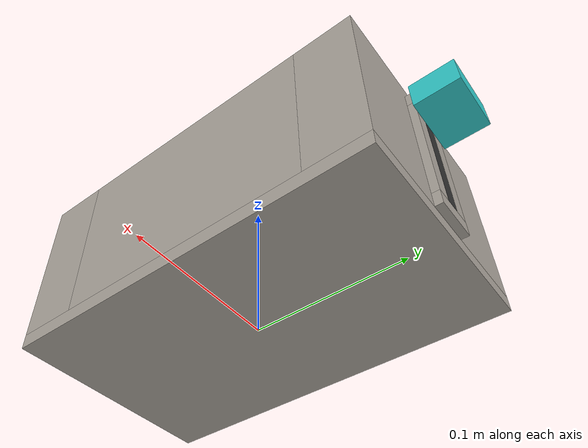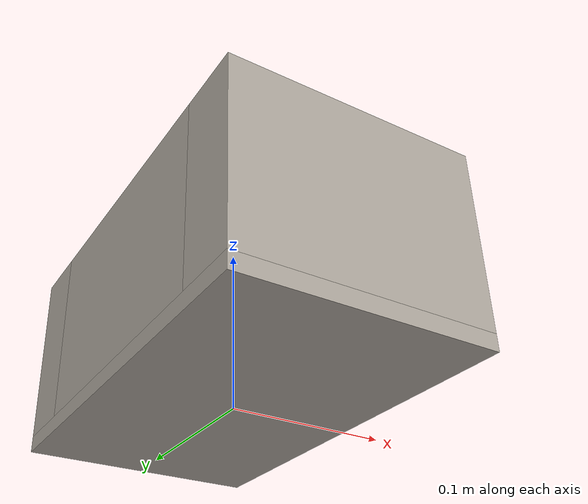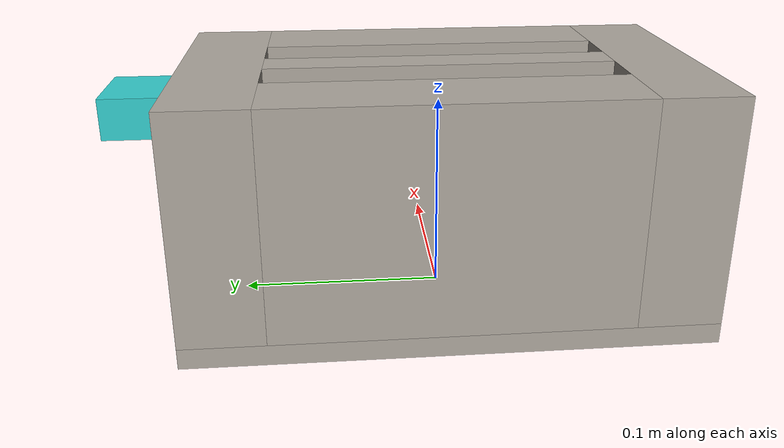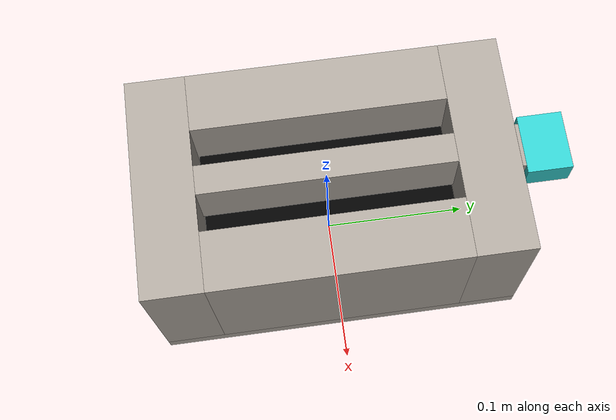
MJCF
<?xml version="1.0" encoding="utf-8"?>
<!-- from https://github.com/vikashplus/mj_envs/tree/master/mj_envs/hand_manipulation_suite/assets -->
<!-- Information about door can be found in this paper: https://arxiv.org/pdf/1709.10087.pdf -->

<mujoco model="toaster">
  <asset>
    <texture file="../textures/steel-brushed.png" type="cube" name="steel" />
    <material name="MatSteel" texture="steel" specular="1" shininess="0.3" rgba="0.9 0.9 0.9 1" />
  </asset>
  <worldbody>
    <body>
      <body name="object">
        <inertial pos="0 0 0" mass="1.47392" diaginertia="0.472637 0.580381 0.109316"/>
        <site name="origin" pos="0 0 0" rgba="0 0 0 0" size="0.005"/>

        <geom pos="0 0.0 0.005" size="0.075 0.125 0.005" type="box" friction="1 1 1" group="0" material="MatSteel"/>

        <geom pos="0  0.105 0.065" size="0.075 0.02 0.055" type="box" friction="1 1 1" group="0" material="MatSteel"/>
        <geom pos="0 -0.105 0.065" size="0.075 0.02 0.055" type="box" friction="1 1 1" group="0" material="MatSteel"/>
        <geom pos=" 0.055 0 0.065" size="0.02 0.085 0.055" type="box" friction="1 1 1" group="0" material="MatSteel"/>
        <geom pos="-0.055 0 0.065" size="0.02 0.085 0.055" type="box" friction="1 1 1" group="0" material="MatSteel"/>

        <geom pos=" 0.0   0 0.1" size="0.01 0.085 0.02" type="box" friction="1 1 1" group="0" material="MatSteel"/>

        <body name="rail" pos="0 0.125 0.06">
          <geom pos=" 0     0.0025 0" size="0.005 0.0025 0.04" type="box" friction="1 1 1" group="1" rgba="0.2 0.2 0.2 1"/>
          <geom pos="-0.01  0.0025 0" size="0.005 0.0025 0.04" type="box" friction="1 1 1" group="1" material="MatSteel"/>
          <geom pos=" 0.01  0.0025 0" size="0.005 0.0025 0.04" type="box" friction="1 1 1" group="1" material="MatSteel"/>

          <geom pos="0 0.0025 -0.045" size="0.015 0.0025 0.005" type="box" friction="1 1 1" group="1" material="MatSteel"/>
          <geom pos="0 0.0025  0.045" size="0.015 0.0025 0.005" type="box" friction="1 1 1" group="1" material="MatSteel"/>
        </body>

        <body name="lever" pos="0 0.125 0.1">
          <inertial pos="0 0 0" mass="1.0e-4" diaginertia="1.0e-6 1.0e-6 1.0e-6" />
          <geom pos="0 0.02 0" size="0.02 0.015 0.01" type="box" friction="1 1 1" rgba="0.2 0.8 0.8 1"
            group="0" />
          <joint type="slide" name="slide_lever" pos="0 0 0" axis="0 0 -1" range="0.0 0.08" limited="true"
            frictionloss="1" stiffness="0.5" damping="0.0025"/>
          <site name="lever" pos="0 0.016 0.01" size="0.02" rgba="0 0 1 0" />
        </body>

        <body name="spring" pos="0 0 0.08">
          <inertial pos="0 0 0" mass="0.001" diaginertia="0.001 0.001 0.001" />
          <geom pos="0 0 -0.005" size="0.034 0.084 0.005" type="box" friction="1 1 1" rgba="0 0 0 1"
            group="0" />
          <joint name="slide_spring" type="slide" pos="0 0 0" axis="0 0 -1" range="0.0 0.06" limited="true"
            damping="0.005"/>
          <site name="spring" pos="0 0.016 0.01" size="0.02" rgba="0 0 1 0" />
        </body>

      </body>
      <site name="bottom_site" pos="0 0 -0.0207" rgba="0 0 0 0" size="0.005"/>
      <site name="top_site" pos="0 0 0.007" rgba="0 0 0 0" size="0.005"/>
      <site name="horizontal_radius_site" pos="0 0 0" rgba="0 0 0 0" size="0.003"/>
    </body>
  </worldbody>

  <equality>
    <joint joint1="slide_spring" joint2="slide_lever" polycoef="0.06 -0.75 0 0 0"/>
  </equality>

</mujoco>
